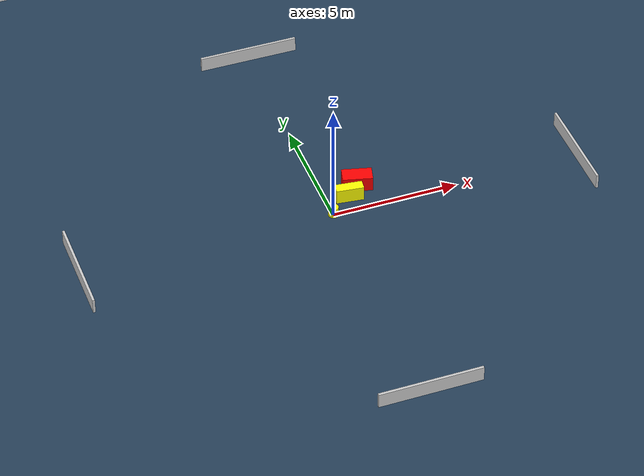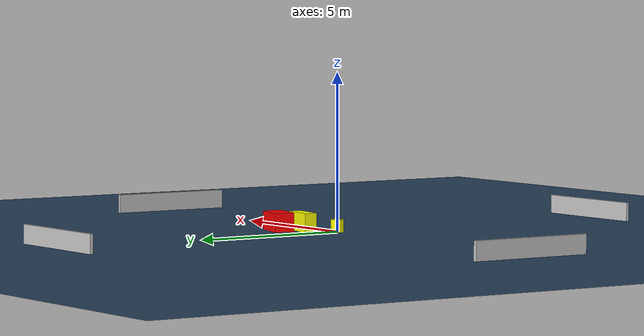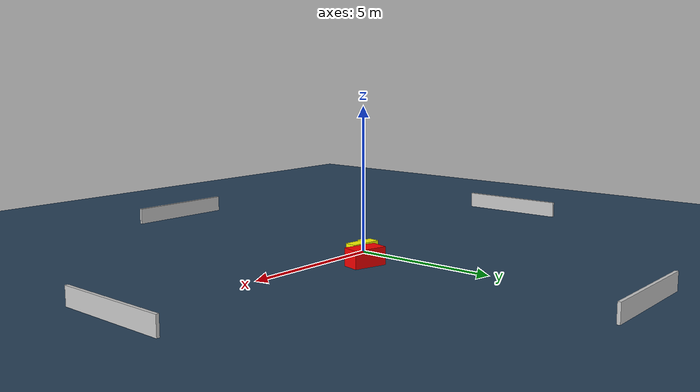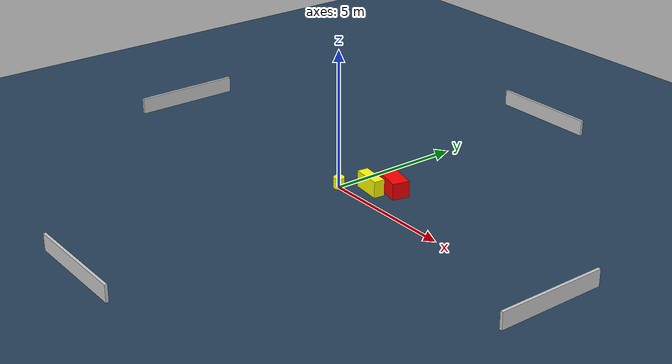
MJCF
<?xml version="1.0" ?>
<mujoco model="generated_environment">
  <option timestep="0.01" integrator="RK4" cone="elliptic"/>
  <default>
    <geom density="1"/>
  </default>
  <asset>
    <texture builtin="gradient" height="3072" name="skybox" rgb1="0.3 0.5 0.7" rgb2="0 0 0" type="skybox" width="512"/>
    <texture builtin="checker" height="300" name="groundplane" rgb1="0.2 0.3 0.4" rgb2="0.1 0.2 0.3" type="2d" width="300"/>
    <material name="groundplane" reflectance="0.2" texrepeat="5 5" texture="groundplane"/>
  </asset>
  <worldbody>
    <light dir="0 0 -1" directional="true" pos="0 0 1.5"/>
    <geom condim="3" friction="0.5 0.005 0.001" material="groundplane" name="floor" pos="0 0 0" size="0 0 0.05" type="plane"/>
    <body name="walls">
      <geom name="wall_1" condim="4" pos="-10.0 0.0 0.3" rgba="0.800000011920929 0.800000011920929 0.800000011920929 1.0" size="0.05 2.0 0.3" type="box"/>
      <geom name="wall_2" condim="4" pos="10.0 0.0 0.3" rgba="0.800000011920929 0.800000011920929 0.800000011920929 1.0" size="0.05 2.0 0.3" type="box"/>
      <geom name="wall_3" condim="4" pos="0.0 -10.0 0.3" rgba="0.800000011920929 0.800000011920929 0.800000011920929 1.0" size="2.0 0.05 0.3" type="box"/>
      <geom name="wall_4" condim="4" pos="0.0 10.0 0.3" rgba="0.800000011920929 0.800000011920929 0.800000011920929 1.0" size="2.0 0.05 0.3" type="box"/>
    </body>
    <body name="robot">
      <joint name="joint_x" type="slide" pos="0 0 0" axis="1 0 0"/>
      <joint name="joint_y" type="slide" pos="0 0 0" axis="0 1 0"/>
      <geom name="robot" type="cylinder" pos="0.0 0.0 0.2" size="0.2 0.2 0.0" mass="5.0" friction="1.0 0.005 0.0001" condim="4" rgba="1.0 1.0 0.0 1.0"/>
    </body>
    <body name="obstacle_1_movable">
      <geom name="obstacle_1_movable" condim="4" pos="0.8889188510161111 0.6907968498763634 0.3" euler="0 0 263.23571250418627" friction="0.0 0.005 0.001" rgba="1.0 1.0 0.0 1.0" size="0.20090784946108642 0.5401705897898247 0.3" type="box" mass="0.1"/>
      <joint type="free"/>
    </body>
    <body name="obstacle_2_static">
      <geom name="obstacle_2_static" condim="4" pos="1.4201853654797825 1.2613462737085757 0.3" euler="0 0 165.49046788200172" friction="0.0 0.005 0.001" rgba="1.0 0.0 0.0 1.0" size="0.5848081042025753 0.311343782483832 0.3" type="box"/>
    </body>
  </worldbody>
  <actuator>
    <motor name="actuator_x" joint="joint_x" gear="1" ctrlrange="-1 1"/>
    <motor name="actuator_y" joint="joint_y" gear="1" ctrlrange="-1 1"/>
  </actuator>
</mujoco>
